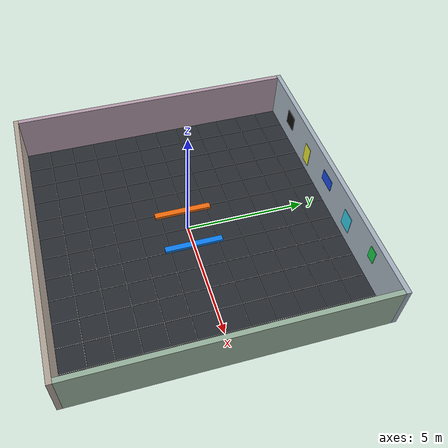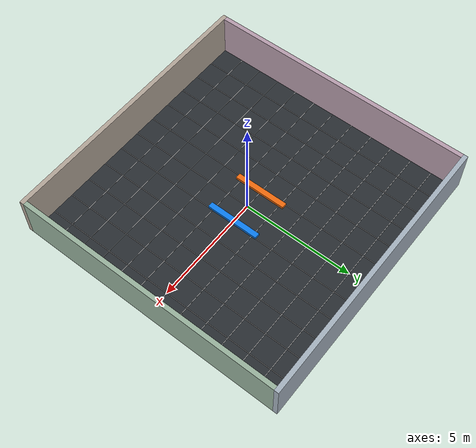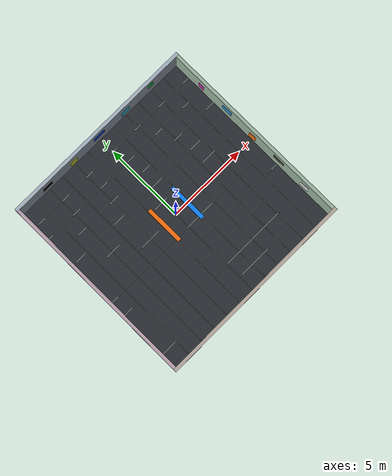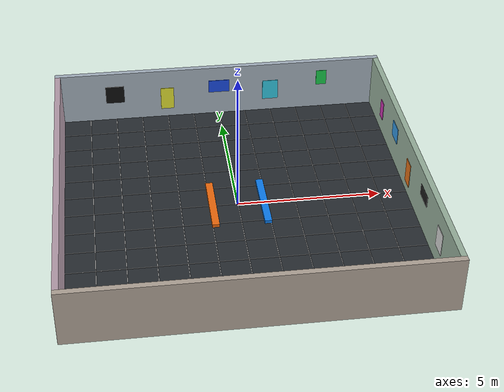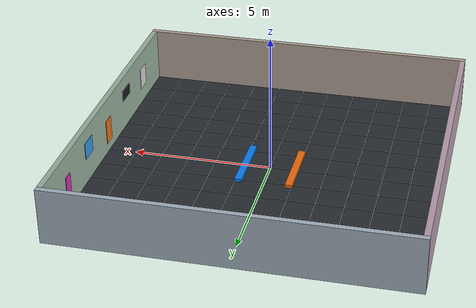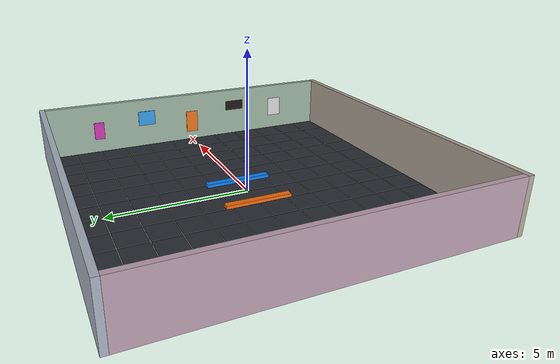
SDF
<?xml version="1.0" ?>
<sdf version="1.9">
  <world name="intercept_arena_v1">
    <physics name="1ms" type="ignored">
      <max_step_size>0.001</max_step_size>
      <real_time_factor>1.0</real_time_factor>
    </physics>

    <plugin filename="gz-sim-physics-system" name="gz::sim::systems::Physics"/>
    <plugin filename="gz-sim-user-commands-system" name="gz::sim::systems::UserCommands"/>
    <plugin filename="gz-sim-scene-broadcaster-system" name="gz::sim::systems::SceneBroadcaster"/>
    <plugin filename="gz-sim-sensors-system" name="gz::sim::systems::Sensors">
      <render_engine>ogre2</render_engine>
    </plugin>
    <light type="directional" name="sun">
      <cast_shadows>true</cast_shadows>
      <pose>0 0 10 0 0 0</pose>
      <diffuse>0.75 0.75 0.75 1</diffuse>
      <specular>0.2 0.2 0.2 1</specular>
      <attenuation>
        <range>1000</range>
        <constant>0.9</constant>
        <linear>0.01</linear>
        <quadratic>0.001</quadratic>
      </attenuation>
      <direction>-0.5 0.1 -0.9</direction>
    </light>

    <light type="point" name="fill_light_north">
      <pose>-3 3 4 0 0 0</pose>
      <diffuse>0.45 0.45 0.45 1</diffuse>
      <specular>0.1 0.1 0.1 1</specular>
      <attenuation>
        <range>15</range>
        <constant>0.5</constant>
        <linear>0.02</linear>
        <quadratic>0.001</quadratic>
      </attenuation>
    </light>

    <light type="point" name="fill_light_south">
      <pose>3 -3 4 0 0 0</pose>
      <diffuse>0.45 0.45 0.45 1</diffuse>
      <specular>0.1 0.1 0.1 1</specular>
      <attenuation>
        <range>15</range>
        <constant>0.5</constant>
        <linear>0.02</linear>
        <quadratic>0.001</quadratic>
      </attenuation>
    </light>

    <model name="arena">
      <static>true</static>
      <link name="arena">
        <collision name="floor">
          <pose>0 0 -0.05 0 0 0</pose>
          <geometry>
            <box>
              <size>12 12 0.1</size>
            </box>
          </geometry>
        </collision>
        <visual name="floor">
          <pose>0 0 -0.05 0 0 0</pose>
          <geometry>
            <box>
              <size>12 12 0.1</size>
            </box>
          </geometry>
          <material>
            <ambient>0.12 0.14 0.16 1</ambient>
            <diffuse>0.16 0.18 0.20 1</diffuse>
            <specular>0.05 0.05 0.05 1</specular>
          </material>
        </visual>

        <!-- High-contrast one-meter grid makes motion easy to inspect visually. -->
        <visual name="grid_x_m5"><pose>-5 0 0.002 0 0 0</pose><geometry><box><size>0.025 12 0.004</size></box></geometry><material><diffuse>0.75 0.75 0.75 1</diffuse></material></visual>
        <visual name="grid_x_m4"><pose>-4 0 0.002 0 0 0</pose><geometry><box><size>0.025 12 0.004</size></box></geometry><material><diffuse>0.75 0.75 0.75 1</diffuse></material></visual>
        <visual name="grid_x_m3"><pose>-3 0 0.002 0 0 0</pose><geometry><box><size>0.025 12 0.004</size></box></geometry><material><diffuse>0.75 0.75 0.75 1</diffuse></material></visual>
        <visual name="grid_x_m2"><pose>-2 0 0.002 0 0 0</pose><geometry><box><size>0.025 12 0.004</size></box></geometry><material><diffuse>0.75 0.75 0.75 1</diffuse></material></visual>
        <visual name="grid_x_m1"><pose>-1 0 0.002 0 0 0</pose><geometry><box><size>0.025 12 0.004</size></box></geometry><material><diffuse>0.75 0.75 0.75 1</diffuse></material></visual>
        <visual name="grid_x_0"><pose>0 0 0.002 0 0 0</pose><geometry><box><size>0.025 12 0.004</size></box></geometry><material><diffuse>0.75 0.75 0.75 1</diffuse></material></visual>
        <visual name="grid_x_1"><pose>1 0 0.002 0 0 0</pose><geometry><box><size>0.025 12 0.004</size></box></geometry><material><diffuse>0.75 0.75 0.75 1</diffuse></material></visual>
        <visual name="grid_x_2"><pose>2 0 0.002 0 0 0</pose><geometry><box><size>0.025 12 0.004</size></box></geometry><material><diffuse>0.75 0.75 0.75 1</diffuse></material></visual>
        <visual name="grid_x_3"><pose>3 0 0.002 0 0 0</pose><geometry><box><size>0.025 12 0.004</size></box></geometry><material><diffuse>0.75 0.75 0.75 1</diffuse></material></visual>
        <visual name="grid_x_4"><pose>4 0 0.002 0 0 0</pose><geometry><box><size>0.025 12 0.004</size></box></geometry><material><diffuse>0.75 0.75 0.75 1</diffuse></material></visual>
        <visual name="grid_x_5"><pose>5 0 0.002 0 0 0</pose><geometry><box><size>0.025 12 0.004</size></box></geometry><material><diffuse>0.75 0.75 0.75 1</diffuse></material></visual>
        <visual name="grid_y_m5"><pose>0 -5 0.002 0 0 0</pose><geometry><box><size>12 0.025 0.004</size></box></geometry><material><diffuse>0.75 0.75 0.75 1</diffuse></material></visual>
        <visual name="grid_y_m4"><pose>0 -4 0.002 0 0 0</pose><geometry><box><size>12 0.025 0.004</size></box></geometry><material><diffuse>0.75 0.75 0.75 1</diffuse></material></visual>
        <visual name="grid_y_m3"><pose>0 -3 0.002 0 0 0</pose><geometry><box><size>12 0.025 0.004</size></box></geometry><material><diffuse>0.75 0.75 0.75 1</diffuse></material></visual>
        <visual name="grid_y_m2"><pose>0 -2 0.002 0 0 0</pose><geometry><box><size>12 0.025 0.004</size></box></geometry><material><diffuse>0.75 0.75 0.75 1</diffuse></material></visual>
        <visual name="grid_y_m1"><pose>0 -1 0.002 0 0 0</pose><geometry><box><size>12 0.025 0.004</size></box></geometry><material><diffuse>0.75 0.75 0.75 1</diffuse></material></visual>
        <visual name="grid_y_0"><pose>0 0 0.002 0 0 0</pose><geometry><box><size>12 0.025 0.004</size></box></geometry><material><diffuse>0.75 0.75 0.75 1</diffuse></material></visual>
        <visual name="grid_y_1"><pose>0 1 0.002 0 0 0</pose><geometry><box><size>12 0.025 0.004</size></box></geometry><material><diffuse>0.75 0.75 0.75 1</diffuse></material></visual>
        <visual name="grid_y_2"><pose>0 2 0.002 0 0 0</pose><geometry><box><size>12 0.025 0.004</size></box></geometry><material><diffuse>0.75 0.75 0.75 1</diffuse></material></visual>
        <visual name="grid_y_3"><pose>0 3 0.002 0 0 0</pose><geometry><box><size>12 0.025 0.004</size></box></geometry><material><diffuse>0.75 0.75 0.75 1</diffuse></material></visual>
        <visual name="grid_y_4"><pose>0 4 0.002 0 0 0</pose><geometry><box><size>12 0.025 0.004</size></box></geometry><material><diffuse>0.75 0.75 0.75 1</diffuse></material></visual>
        <visual name="grid_y_5"><pose>0 5 0.002 0 0 0</pose><geometry><box><size>12 0.025 0.004</size></box></geometry><material><diffuse>0.75 0.75 0.75 1</diffuse></material></visual>

        <collision name="north_wall"><pose>0 6.1 1 0 0 0</pose><geometry><box><size>12.4 0.2 2</size></box></geometry></collision>
        <visual name="north_wall"><pose>0 6.1 1 0 0 0</pose><geometry><box><size>12.4 0.2 2</size></box></geometry><material><diffuse>0.65 0.70 0.75 1</diffuse></material></visual>
        <collision name="south_wall"><pose>0 -6.1 1 0 0 0</pose><geometry><box><size>12.4 0.2 2</size></box></geometry></collision>
        <visual name="south_wall"><pose>0 -6.1 1 0 0 0</pose><geometry><box><size>12.4 0.2 2</size></box></geometry><material><diffuse>0.70 0.65 0.60 1</diffuse></material></visual>
        <collision name="east_wall"><pose>6.1 0 1 0 0 0</pose><geometry><box><size>0.2 12 2</size></box></geometry></collision>
        <visual name="east_wall"><pose>6.1 0 1 0 0 0</pose><geometry><box><size>0.2 12 2</size></box></geometry><material><diffuse>0.60 0.70 0.62 1</diffuse></material></visual>
        <collision name="west_wall"><pose>-6.1 0 1 0 0 0</pose><geometry><box><size>0.2 12 2</size></box></geometry></collision>
        <visual name="west_wall"><pose>-6.1 0 1 0 0 0</pose><geometry><box><size>0.2 12 2</size></box></geometry><material><diffuse>0.72 0.62 0.68 1</diffuse></material></visual>

        <!-- Distinct wall markers improve feature distribution above the floor. -->
        <visual name="marker_n1"><pose>-4 5.99 1.1 0 0 0</pose><geometry><box><size>0.7 0.02 0.7</size></box></geometry><material><diffuse>0.05 0.05 0.05 1</diffuse></material></visual>
        <visual name="marker_n2"><pose>-2 5.99 0.8 0 0 0</pose><geometry><box><size>0.5 0.02 0.9</size></box></geometry><material><diffuse>0.9 0.9 0.2 1</diffuse></material></visual>
        <visual name="marker_n3"><pose>0 5.99 1.2 0 0 0</pose><geometry><box><size>0.8 0.02 0.5</size></box></geometry><material><diffuse>0.1 0.3 0.9 1</diffuse></material></visual>
        <visual name="marker_n4"><pose>2 5.99 0.9 0 0 0</pose><geometry><box><size>0.6 0.02 0.8</size></box></geometry><material><diffuse>0.2 0.8 0.9 1</diffuse></material></visual>
        <visual name="marker_n5"><pose>4 5.99 1.3 0 0 0</pose><geometry><box><size>0.4 0.02 0.6</size></box></geometry><material><diffuse>0.1 0.8 0.3 1</diffuse></material></visual>
        <visual name="marker_e1"><pose>5.99 -4 1.0 0 0 0</pose><geometry><box><size>0.02 0.6 0.8</size></box></geometry><material><diffuse>0.85 0.85 0.85 1</diffuse></material></visual>
        <visual name="marker_e2"><pose>5.99 -2 1.3 0 0 0</pose><geometry><box><size>0.02 0.8 0.4</size></box></geometry><material><diffuse>0.1 0.1 0.1 1</diffuse></material></visual>
        <visual name="marker_e3"><pose>5.99 0 0.8 0 0 0</pose><geometry><box><size>0.02 0.5 0.9</size></box></geometry><material><diffuse>0.9 0.45 0.1 1</diffuse></material></visual>
        <visual name="marker_e4"><pose>5.99 2 1.2 0 0 0</pose><geometry><box><size>0.02 0.7 0.6</size></box></geometry><material><diffuse>0.2 0.6 0.9 1</diffuse></material></visual>
        <visual name="marker_e5"><pose>5.99 4 0.9 0 0 0</pose><geometry><box><size>0.02 0.4 0.7</size></box></geometry><material><diffuse>0.8 0.2 0.7 1</diffuse></material></visual>
      </link>
    </model>

    <model name="chicane_barrier_a">
      <static>true</static>
      <pose>-0.9 0 0.06 0 0 0</pose>
      <link name="barrier">
        <collision name="collision">
          <geometry><box><size>0.25 2.4 0.12</size></box></geometry>
        </collision>
        <visual name="visual">
          <geometry><box><size>0.25 2.4 0.12</size></box></geometry>
          <material>
            <ambient>0.85 0.34 0.04 1</ambient>
            <diffuse>0.95 0.42 0.05 1</diffuse>
          </material>
        </visual>
      </link>
    </model>

    <model name="chicane_barrier_b">
      <static>true</static>
      <pose>0.9 0 0.06 0 0 0</pose>
      <link name="barrier">
        <collision name="collision">
          <geometry><box><size>0.25 2.4 0.12</size></box></geometry>
        </collision>
        <visual name="visual">
          <geometry><box><size>0.25 2.4 0.12</size></box></geometry>
          <material>
            <ambient>0.04 0.42 0.85 1</ambient>
            <diffuse>0.05 0.50 0.95 1</diffuse>
          </material>
        </visual>
      </link>
    </model>

  </world>
</sdf>
